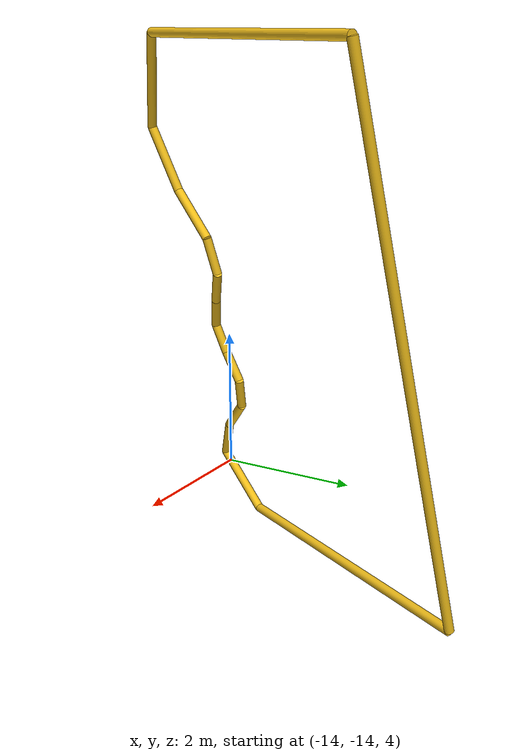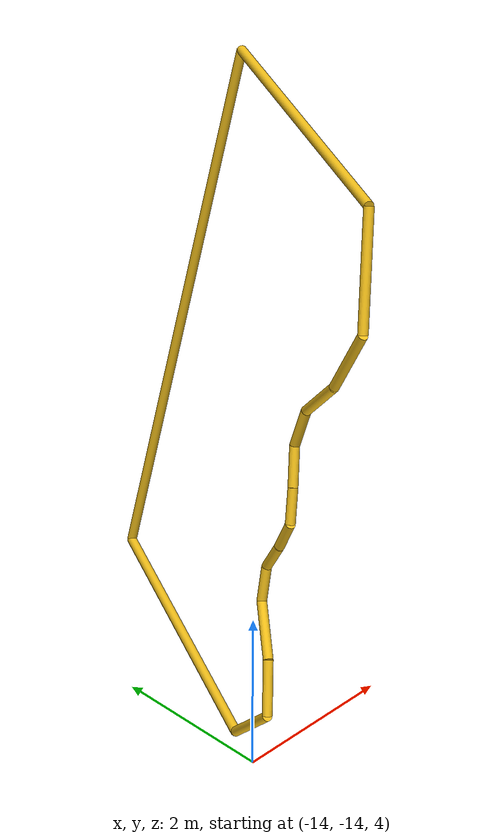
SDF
<sdf version="1.9">
 <world name="wide_scrambled_fast_closed_loop">
  <model name="ground">
   <static>true</static>
   <pose>0 0 -6 0 0 0</pose>
   <link name="link">
    <collision name="c"><geometry><plane><normal>0 0 1</normal><size>80 80</size></plane></geometry></collision>
    <visual name="v">
     <geometry><plane><normal>0 0 1</normal><size>80 80</size></plane></geometry>
     <material><diffuse>0.08 0.10 0.13 1</diffuse></material>
    </visual>
   </link>
  </model>
  <model name="gate_3_bspline_wave">
   <static>true</static>
   <pose>-12.000000 -12.000000 7.000000 0.000000 1.350808 2.677945</pose>
   <link name="edge_0">
    <pose>0.000000 -2.550000 0 0 1.570796 0.000000</pose>
    <collision name="collision">
     <geometry><cylinder><radius>0.06</radius><length>6.900000</length></cylinder></geometry>
    </collision>
    <visual name="visual">
     <geometry><cylinder><radius>0.06</radius><length>6.900000</length></cylinder></geometry>
     <material><diffuse>0.95 0.75 0.10 1</diffuse><emissive>0.95 0.75 0.10 1</emissive></material>
    </visual>
   </link>
   <link name="edge_1">
    <pose>3.450000 -0.450000 0 0 1.570796 1.570796</pose>
    <collision name="collision">
     <geometry><cylinder><radius>0.06</radius><length>4.200000</length></cylinder></geometry>
    </collision>
    <visual name="visual">
     <geometry><cylinder><radius>0.06</radius><length>4.200000</length></cylinder></geometry>
     <material><diffuse>0.95 0.75 0.10 1</diffuse><emissive>0.95 0.75 0.10 1</emissive></material>
    </visual>
   </link>
   <link name="edge_2">
    <pose>3.095679 1.988503 0 0 1.570796 2.379022</pose>
    <collision name="collision">
     <geometry><cylinder><radius>0.06</radius><length>0.980057</length></cylinder></geometry>
    </collision>
    <visual name="visual">
     <geometry><cylinder><radius>0.06</radius><length>0.980057</length></cylinder></geometry>
     <material><diffuse>0.95 0.75 0.10 1</diffuse><emissive>0.95 0.75 0.10 1</emissive></material>
    </visual>
   </link>
   <link name="edge_3">
    <pose>2.461111 2.163194 0 0 1.570796 -2.612628</pose>
    <collision name="collision">
     <geometry><cylinder><radius>0.06</radius><length>0.649223</length></cylinder></geometry>
    </collision>
    <visual name="visual">
     <geometry><cylinder><radius>0.06</radius><length>0.649223</length></cylinder></geometry>
     <material><diffuse>0.95 0.75 0.10 1</diffuse><emissive>0.95 0.75 0.10 1</emissive></material>
    </visual>
   </link>
   <link name="edge_4">
    <pose>1.948765 1.739275 0 0 1.570796 -2.299350</pose>
    <collision name="collision">
     <geometry><cylinder><radius>0.06</radius><length>0.697212</length></cylinder></geometry>
    </collision>
    <visual name="visual">
     <geometry><cylinder><radius>0.06</radius><length>0.697212</length></cylinder></geometry>
     <material><diffuse>0.95 0.75 0.10 1</diffuse><emissive>0.95 0.75 0.10 1</emissive></material>
    </visual>
   </link>
   <link name="edge_5">
    <pose>1.509568 1.432793 0 0 1.570796 -2.921307</pose>
    <collision name="collision">
     <geometry><cylinder><radius>0.06</radius><length>0.424454</length></cylinder></geometry>
    </collision>
    <visual name="visual">
     <geometry><cylinder><radius>0.06</radius><length>0.424454</length></cylinder></geometry>
     <material><diffuse>0.95 0.75 0.10 1</diffuse><emissive>0.95 0.75 0.10 1</emissive></material>
    </visual>
   </link>
   <link name="edge_6">
    <pose>1.108333 1.479861 0 0 1.570796 2.693001</pose>
    <collision name="collision">
     <geometry><cylinder><radius>0.06</radius><length>0.430906</length></cylinder></geometry>
    </collision>
    <visual name="visual">
     <geometry><cylinder><radius>0.06</radius><length>0.430906</length></cylinder></geometry>
     <material><diffuse>0.95 0.75 0.10 1</diffuse><emissive>0.95 0.75 0.10 1</emissive></material>
    </visual>
   </link>
   <link name="edge_7">
    <pose>0.723765 1.636651 0 0 1.570796 2.820450</pose>
    <collision name="collision">
     <geometry><cylinder><radius>0.06</radius><length>0.401385</length></cylinder></geometry>
    </collision>
    <visual name="visual">
     <geometry><cylinder><radius>0.06</radius><length>0.401385</length></cylinder></geometry>
     <material><diffuse>0.95 0.75 0.10 1</diffuse><emissive>0.95 0.75 0.10 1</emissive></material>
    </visual>
   </link>
   <link name="edge_8">
    <pose>0.336883 1.620293 0 0 1.570796 -2.756153</pose>
    <collision name="collision">
     <geometry><cylinder><radius>0.06</radius><length>0.424010</length></cylinder></geometry>
    </collision>
    <visual name="visual">
     <geometry><cylinder><radius>0.06</radius><length>0.424010</length></cylinder></geometry>
     <material><diffuse>0.95 0.75 0.10 1</diffuse><emissive>0.95 0.75 0.10 1</emissive></material>
    </visual>
   </link>
   <link name="edge_9">
    <pose>-0.073611 1.432639 0 0 1.570796 -2.674490</pose>
    <collision name="collision">
     <geometry><cylinder><radius>0.06</radius><length>0.479446</length></cylinder></geometry>
    </collision>
    <visual name="visual">
     <geometry><cylinder><radius>0.06</radius><length>0.479446</length></cylinder></geometry>
     <material><diffuse>0.95 0.75 0.10 1</diffuse><emissive>0.95 0.75 0.10 1</emissive></material>
    </visual>
   </link>
   <link name="edge_10">
    <pose>-0.531327 1.360262 0 0 1.570796 2.996638</pose>
    <collision name="collision">
     <geometry><cylinder><radius>0.06</radius><length>0.492511</length></cylinder></geometry>
    </collision>
    <visual name="visual">
     <geometry><cylinder><radius>0.06</radius><length>0.492511</length></cylinder></geometry>
     <material><diffuse>0.95 0.75 0.10 1</diffuse><emissive>0.95 0.75 0.10 1</emissive></material>
    </visual>
   </link>
   <link name="edge_11">
    <pose>-1.071759 1.651929 0 0 1.570796 2.429614</pose>
    <collision name="collision">
     <geometry><cylinder><radius>0.06</radius><length>0.783967</length></cylinder></geometry>
    </collision>
    <visual name="visual">
     <geometry><cylinder><radius>0.06</radius><length>0.783967</length></cylinder></geometry>
     <material><diffuse>0.95 0.75 0.10 1</diffuse><emissive>0.95 0.75 0.10 1</emissive></material>
    </visual>
   </link>
   <link name="edge_12">
    <pose>-1.787500 2.082639 0 0 1.570796 2.746723</pose>
    <collision name="collision">
     <geometry><cylinder><radius>0.06</radius><length>0.907823</length></cylinder></geometry>
    </collision>
    <visual name="visual">
     <geometry><cylinder><radius>0.06</radius><length>0.907823</length></cylinder></geometry>
     <material><diffuse>0.95 0.75 0.10 1</diffuse><emissive>0.95 0.75 0.10 1</emissive></material>
    </visual>
   </link>
   <link name="edge_13">
    <pose>-2.828241 1.953627 0 0 1.570796 -2.687321</pose>
    <collision name="collision">
     <geometry><cylinder><radius>0.06</radius><length>1.383869</length></cylinder></geometry>
    </collision>
    <visual name="visual">
     <geometry><cylinder><radius>0.06</radius><length>1.383869</length></cylinder></geometry>
     <material><diffuse>0.95 0.75 0.10 1</diffuse><emissive>0.95 0.75 0.10 1</emissive></material>
    </visual>
   </link>
   <link name="edge_14">
    <pose>-3.450000 -0.450000 0 0 1.570796 -1.570796</pose>
    <collision name="collision">
     <geometry><cylinder><radius>0.06</radius><length>4.200000</length></cylinder></geometry>
    </collision>
    <visual name="visual">
     <geometry><cylinder><radius>0.06</radius><length>4.200000</length></cylinder></geometry>
     <material><diffuse>0.95 0.75 0.10 1</diffuse><emissive>0.95 0.75 0.10 1</emissive></material>
    </visual>
   </link>
  </model>
 </world>
</sdf>
